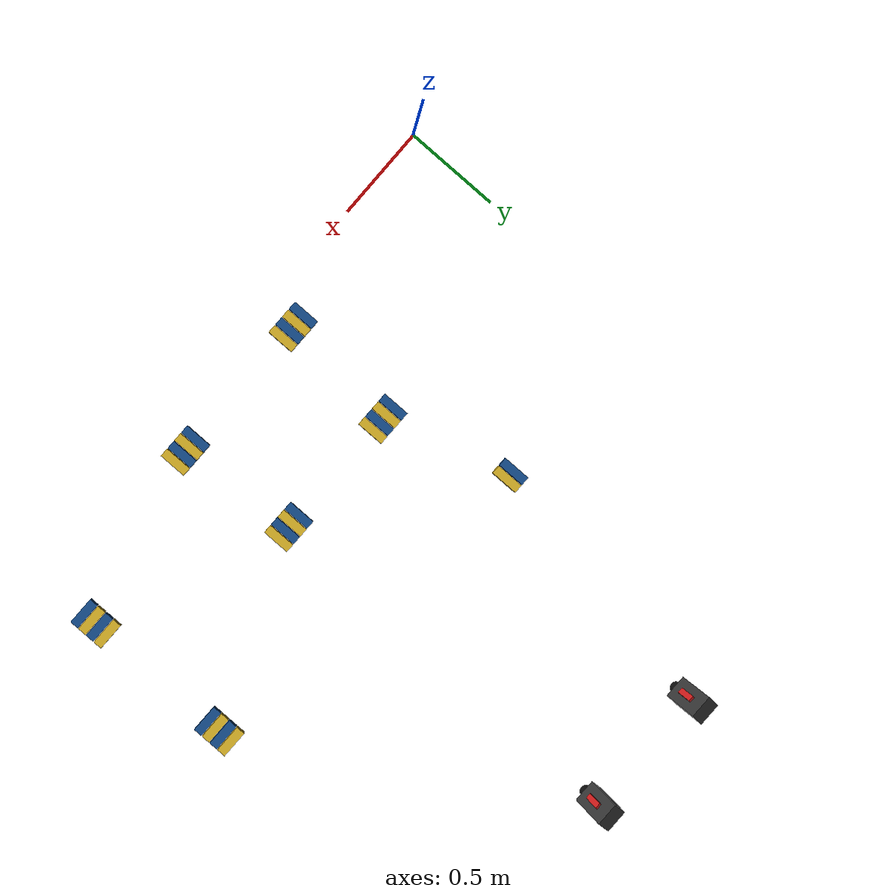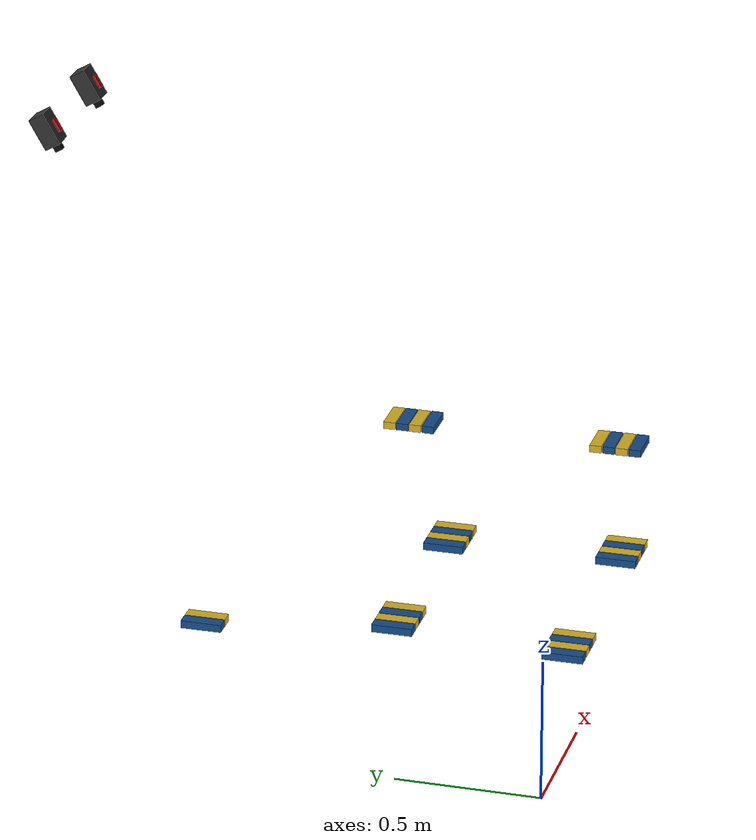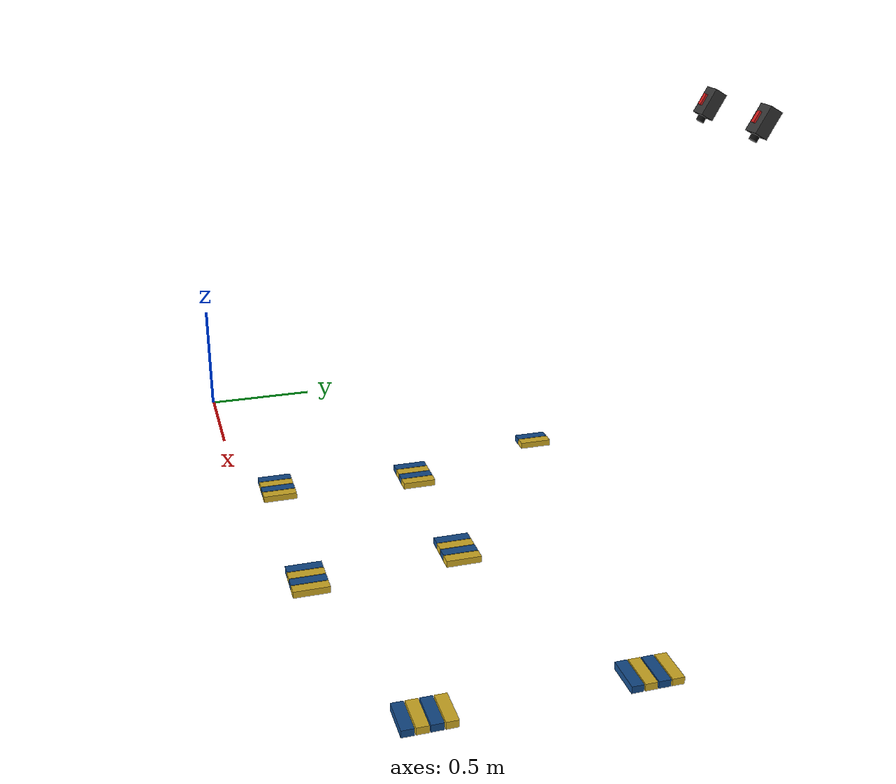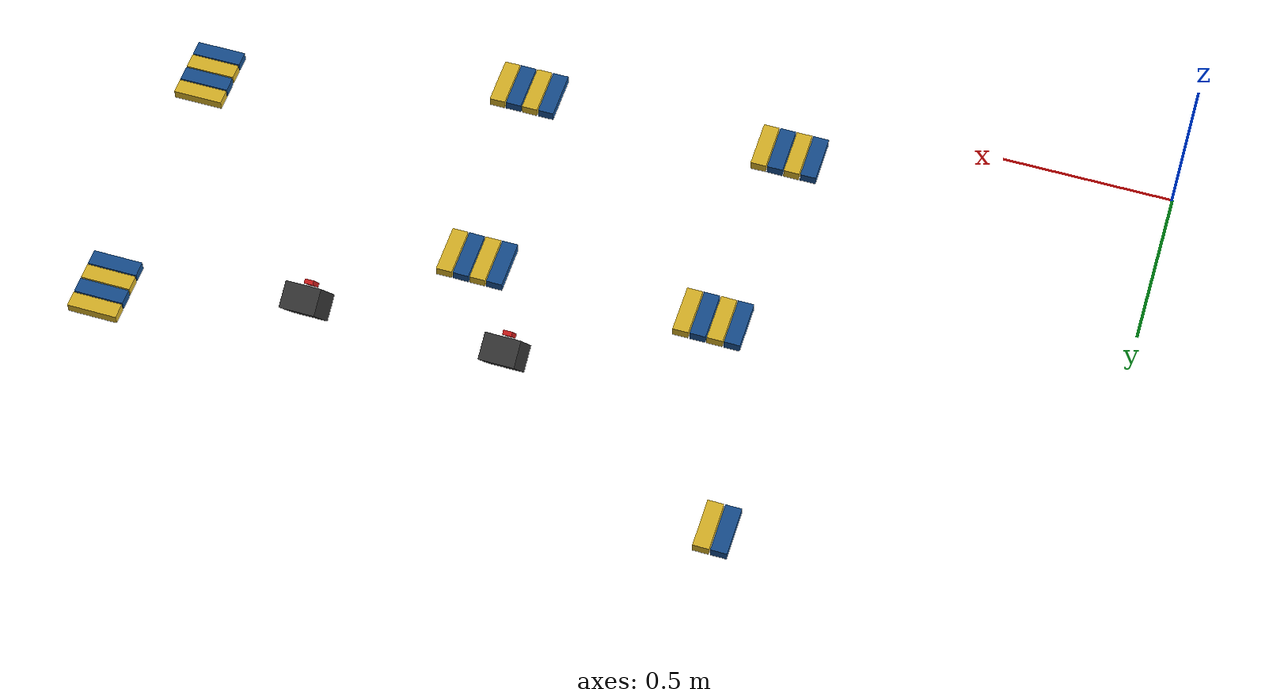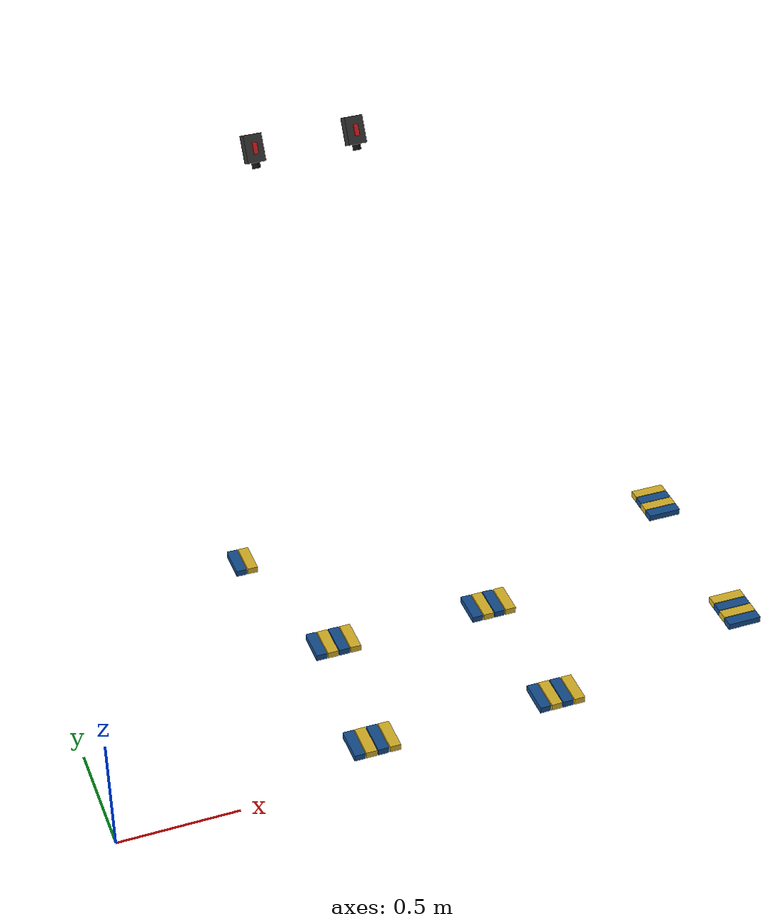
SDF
<sdf version="1.10">
 <world name="Eurobot_world">
  <model name="overhead_camera_yellow">
   <static>true</static>
   <pose>1.275 2.1 1.67 0 1.047198 -1.5708</pose>
   <link name="camera_link">
    <visual name="body_visual">
     <geometry><box><size>0.12 0.08 0.06</size></box></geometry>
     <material><ambient>0.15 0.15 0.15 1</ambient><diffuse>0.2 0.2 0.2 1</diffuse></material>
    </visual>
    <visual name="lens_visual">
     <pose>0.07 0 0 0 1.5708 0</pose>
     <geometry><cylinder><radius>0.018</radius><length>0.03</length></cylinder></geometry>
     <material><ambient>0.05 0.05 0.05 1</ambient><diffuse>0.05 0.05 0.05 1</diffuse></material>
    </visual>
    <visual name="top_marker_visual">
     <pose>0 0 0.04 0 0 0</pose>
     <geometry><box><size>0.05 0.02 0.01</size></box></geometry>
     <material><ambient>0.8 0.1 0.1 1</ambient><diffuse>0.8 0.1 0.1 1</diffuse></material>
    </visual>
    <sensor name="overhead_rgb" type="camera">
     <pose>0.085 0 0 0 0 0</pose>
     <always_on>0</always_on>
     <update_rate>30</update_rate>
     <visualize>true</visualize>
     <topic>/overhead_cam_yellow/image</topic>
     <camera>
      <horizontal_fov>1.6</horizontal_fov>
      <image><width>1920</width><height>1080</height><format>R8G8B8</format></image>
      <clip><near>0.05</near><far>20.0</far></clip>
     </camera>
    </sensor>
   </link>
  </model>
  <model name="overhead_camera_blue">
   <static>true</static>
   <pose>1.725 2.1 1.67 0 1.047198 -1.5708</pose>
   <link name="camera_link">
    <visual name="body_visual">
     <geometry><box><size>0.12 0.08 0.06</size></box></geometry>
     <material><ambient>0.15 0.15 0.15 1</ambient><diffuse>0.2 0.2 0.2 1</diffuse></material>
    </visual>
    <visual name="lens_visual">
     <pose>0.07 0 0 0 1.5708 0</pose>
     <geometry><cylinder><radius>0.018</radius><length>0.03</length></cylinder></geometry>
     <material><ambient>0.05 0.05 0.05 1</ambient><diffuse>0.05 0.05 0.05 1</diffuse></material>
    </visual>
    <visual name="top_marker_visual">
     <pose>0 0 0.04 0 0 0</pose>
     <geometry><box><size>0.05 0.02 0.01</size></box></geometry>
     <material><ambient>0.8 0.1 0.1 1</ambient><diffuse>0.8 0.1 0.1 1</diffuse></material>
    </visual>
    <sensor name="overhead_rgb" type="camera">
     <pose>0.085 0 0 0 0 0</pose>
     <always_on>0</always_on>
     <update_rate>30</update_rate>
     <visualize>true</visualize>
     <topic>/overhead_cam_blue/image</topic>
     <camera>
      <horizontal_fov>1.6</horizontal_fov>
      <image><width>1920</width><height>1080</height><format>R8G8B8</format></image>
      <clip><near>0.05</near><far>20.0</far></clip>
     </camera>
    </sensor>
   </link>
  </model>
  <model name="jenga_z3_p1">
   <pose>1.075 0.8 0.015 0 0 1.5707963267948966</pose>
   <link name="link">
    <inertial>
     <mass>0.02</mass>
     <inertia>
      <ixx>0.0000012</ixx>
      <iyy>0.0000042</iyy>
      <izz>0.0000045</izz>
      <ixy>0</ixy>
      <ixz>0</ixz>
      <iyz>0</iyz>
     </inertia>
    </inertial>
    <collision name="collision">
     <geometry><box><size>0.140 0.040 0.022</size></box></geometry>
     <surface>
      <friction><ode><mu>0.3</mu><mu2>0.3</mu2></ode></friction>
      <contact><ode><max_vel>0.1</max_vel><min_depth>0.001</min_depth></ode></contact>
     </surface>
    </collision>
    <visual name="visual">
     <geometry><box><size>0.146 0.046 0.028</size></box></geometry>
     <material>
      <ambient>0.08 0.3 0.55 1</ambient>
      <diffuse>0.08 0.3 0.55 1</diffuse>
      <specular>0.2 0.2 0.2 1</specular>
     </material>
    </visual>
   </link>
  </model>
  <model name="jenga_z3_p2">
   <pose>1.125 0.8 0.015 0 0 1.5707963267948966</pose>
   <link name="link">
    <inertial>
     <mass>0.02</mass>
     <inertia>
      <ixx>0.0000012</ixx>
      <iyy>0.0000042</iyy>
      <izz>0.0000045</izz>
      <ixy>0</ixy>
      <ixz>0</ixz>
      <iyz>0</iyz>
     </inertia>
    </inertial>
    <collision name="collision">
     <geometry><box><size>0.140 0.040 0.022</size></box></geometry>
     <surface>
      <friction><ode><mu>0.3</mu><mu2>0.3</mu2></ode></friction>
      <contact><ode><max_vel>0.1</max_vel><min_depth>0.001</min_depth></ode></contact>
     </surface>
    </collision>
    <visual name="visual">
     <geometry><box><size>0.146 0.046 0.028</size></box></geometry>
     <material>
      <ambient>0.85 0.7 0.15 1</ambient>
      <diffuse>0.85 0.7 0.15 1</diffuse>
      <specular>0.2 0.2 0.2 1</specular>
     </material>
    </visual>
   </link>
  </model>
  <model name="jenga_z3_p3">
   <pose>1.1749999999999998 0.8 0.015 0 0 1.5707963267948966</pose>
   <link name="link">
    <inertial>
     <mass>0.02</mass>
     <inertia>
      <ixx>0.0000012</ixx>
      <iyy>0.0000042</iyy>
      <izz>0.0000045</izz>
      <ixy>0</ixy>
      <ixz>0</ixz>
      <iyz>0</iyz>
     </inertia>
    </inertial>
    <collision name="collision">
     <geometry><box><size>0.140 0.040 0.022</size></box></geometry>
     <surface>
      <friction><ode><mu>0.3</mu><mu2>0.3</mu2></ode></friction>
      <contact><ode><max_vel>0.1</max_vel><min_depth>0.001</min_depth></ode></contact>
     </surface>
    </collision>
    <visual name="visual">
     <geometry><box><size>0.146 0.046 0.028</size></box></geometry>
     <material>
      <ambient>0.08 0.3 0.55 1</ambient>
      <diffuse>0.08 0.3 0.55 1</diffuse>
      <specular>0.2 0.2 0.2 1</specular>
     </material>
    </visual>
   </link>
  </model>
  <model name="jenga_z3_p4">
   <pose>1.2249999999999999 0.8 0.015 0 0 1.5707963267948966</pose>
   <link name="link">
    <inertial>
     <mass>0.02</mass>
     <inertia>
      <ixx>0.0000012</ixx>
      <iyy>0.0000042</iyy>
      <izz>0.0000045</izz>
      <ixy>0</ixy>
      <ixz>0</ixz>
      <iyz>0</iyz>
     </inertia>
    </inertial>
    <collision name="collision">
     <geometry><box><size>0.140 0.040 0.022</size></box></geometry>
     <surface>
      <friction><ode><mu>0.3</mu><mu2>0.3</mu2></ode></friction>
      <contact><ode><max_vel>0.1</max_vel><min_depth>0.001</min_depth></ode></contact>
     </surface>
    </collision>
    <visual name="visual">
     <geometry><box><size>0.146 0.046 0.028</size></box></geometry>
     <material>
      <ambient>0.85 0.7 0.15 1</ambient>
      <diffuse>0.85 0.7 0.15 1</diffuse>
      <specular>0.2 0.2 0.2 1</specular>
     </material>
    </visual>
   </link>
  </model>
  <model name="jenga_z4_p1">
   <pose>1.0250000000000001 0.175 0.015 0 0 1.5707963267948966</pose>
   <link name="link">
    <inertial>
     <mass>0.02</mass>
     <inertia>
      <ixx>0.0000012</ixx>
      <iyy>0.0000042</iyy>
      <izz>0.0000045</izz>
      <ixy>0</ixy>
      <ixz>0</ixz>
      <iyz>0</iyz>
     </inertia>
    </inertial>
    <collision name="collision">
     <geometry><box><size>0.140 0.040 0.022</size></box></geometry>
     <surface>
      <friction><ode><mu>0.3</mu><mu2>0.3</mu2></ode></friction>
      <contact><ode><max_vel>0.1</max_vel><min_depth>0.001</min_depth></ode></contact>
     </surface>
    </collision>
    <visual name="visual">
     <geometry><box><size>0.146 0.046 0.028</size></box></geometry>
     <material>
      <ambient>0.08 0.3 0.55 1</ambient>
      <diffuse>0.08 0.3 0.55 1</diffuse>
      <specular>0.2 0.2 0.2 1</specular>
     </material>
    </visual>
   </link>
  </model>
  <model name="jenga_z4_p2">
   <pose>1.0750000000000002 0.175 0.015 0 0 1.5707963267948966</pose>
   <link name="link">
    <inertial>
     <mass>0.02</mass>
     <inertia>
      <ixx>0.0000012</ixx>
      <iyy>0.0000042</iyy>
      <izz>0.0000045</izz>
      <ixy>0</ixy>
      <ixz>0</ixz>
      <iyz>0</iyz>
     </inertia>
    </inertial>
    <collision name="collision">
     <geometry><box><size>0.140 0.040 0.022</size></box></geometry>
     <surface>
      <friction><ode><mu>0.3</mu><mu2>0.3</mu2></ode></friction>
      <contact><ode><max_vel>0.1</max_vel><min_depth>0.001</min_depth></ode></contact>
     </surface>
    </collision>
    <visual name="visual">
     <geometry><box><size>0.146 0.046 0.028</size></box></geometry>
     <material>
      <ambient>0.85 0.7 0.15 1</ambient>
      <diffuse>0.85 0.7 0.15 1</diffuse>
      <specular>0.2 0.2 0.2 1</specular>
     </material>
    </visual>
   </link>
  </model>
  <model name="jenga_z4_p3">
   <pose>1.125 0.175 0.015 0 0 1.5707963267948966</pose>
   <link name="link">
    <inertial>
     <mass>0.02</mass>
     <inertia>
      <ixx>0.0000012</ixx>
      <iyy>0.0000042</iyy>
      <izz>0.0000045</izz>
      <ixy>0</ixy>
      <ixz>0</ixz>
      <iyz>0</iyz>
     </inertia>
    </inertial>
    <collision name="collision">
     <geometry><box><size>0.140 0.040 0.022</size></box></geometry>
     <surface>
      <friction><ode><mu>0.3</mu><mu2>0.3</mu2></ode></friction>
      <contact><ode><max_vel>0.1</max_vel><min_depth>0.001</min_depth></ode></contact>
     </surface>
    </collision>
    <visual name="visual">
     <geometry><box><size>0.146 0.046 0.028</size></box></geometry>
     <material>
      <ambient>0.08 0.3 0.55 1</ambient>
      <diffuse>0.08 0.3 0.55 1</diffuse>
      <specular>0.2 0.2 0.2 1</specular>
     </material>
    </visual>
   </link>
  </model>
  <model name="jenga_z4_p4">
   <pose>1.175 0.175 0.015 0 0 1.5707963267948966</pose>
   <link name="link">
    <inertial>
     <mass>0.02</mass>
     <inertia>
      <ixx>0.0000012</ixx>
      <iyy>0.0000042</iyy>
      <izz>0.0000045</izz>
      <ixy>0</ixy>
      <ixz>0</ixz>
      <iyz>0</iyz>
     </inertia>
    </inertial>
    <collision name="collision">
     <geometry><box><size>0.140 0.040 0.022</size></box></geometry>
     <surface>
      <friction><ode><mu>0.3</mu><mu2>0.3</mu2></ode></friction>
      <contact><ode><max_vel>0.1</max_vel><min_depth>0.001</min_depth></ode></contact>
     </surface>
    </collision>
    <visual name="visual">
     <geometry><box><size>0.146 0.046 0.028</size></box></geometry>
     <material>
      <ambient>0.85 0.7 0.15 1</ambient>
      <diffuse>0.85 0.7 0.15 1</diffuse>
      <specular>0.2 0.2 0.2 1</specular>
     </material>
    </visual>
   </link>
  </model>
  <model name="jenga_z5_p1">
   <pose>1.7750000000000001 0.8 0.015 0 0 1.5707963267948966</pose>
   <link name="link">
    <inertial>
     <mass>0.02</mass>
     <inertia>
      <ixx>0.0000012</ixx>
      <iyy>0.0000042</iyy>
      <izz>0.0000045</izz>
      <ixy>0</ixy>
      <ixz>0</ixz>
      <iyz>0</iyz>
     </inertia>
    </inertial>
    <collision name="collision">
     <geometry><box><size>0.140 0.040 0.022</size></box></geometry>
     <surface>
      <friction><ode><mu>0.3</mu><mu2>0.3</mu2></ode></friction>
      <contact><ode><max_vel>0.1</max_vel><min_depth>0.001</min_depth></ode></contact>
     </surface>
    </collision>
    <visual name="visual">
     <geometry><box><size>0.146 0.046 0.028</size></box></geometry>
     <material>
      <ambient>0.08 0.3 0.55 1</ambient>
      <diffuse>0.08 0.3 0.55 1</diffuse>
      <specular>0.2 0.2 0.2 1</specular>
     </material>
    </visual>
   </link>
  </model>
  <model name="jenga_z5_p2">
   <pose>1.8250000000000002 0.8 0.015 0 0 1.5707963267948966</pose>
   <link name="link">
    <inertial>
     <mass>0.02</mass>
     <inertia>
      <ixx>0.0000012</ixx>
      <iyy>0.0000042</iyy>
      <izz>0.0000045</izz>
      <ixy>0</ixy>
      <ixz>0</ixz>
      <iyz>0</iyz>
     </inertia>
    </inertial>
    <collision name="collision">
     <geometry><box><size>0.140 0.040 0.022</size></box></geometry>
     <surface>
      <friction><ode><mu>0.3</mu><mu2>0.3</mu2></ode></friction>
      <contact><ode><max_vel>0.1</max_vel><min_depth>0.001</min_depth></ode></contact>
     </surface>
    </collision>
    <visual name="visual">
     <geometry><box><size>0.146 0.046 0.028</size></box></geometry>
     <material>
      <ambient>0.85 0.7 0.15 1</ambient>
      <diffuse>0.85 0.7 0.15 1</diffuse>
      <specular>0.2 0.2 0.2 1</specular>
     </material>
    </visual>
   </link>
  </model>
  <model name="jenga_z5_p3">
   <pose>1.875 0.8 0.015 0 0 1.5707963267948966</pose>
   <link name="link">
    <inertial>
     <mass>0.02</mass>
     <inertia>
      <ixx>0.0000012</ixx>
      <iyy>0.0000042</iyy>
      <izz>0.0000045</izz>
      <ixy>0</ixy>
      <ixz>0</ixz>
      <iyz>0</iyz>
     </inertia>
    </inertial>
    <collision name="collision">
     <geometry><box><size>0.140 0.040 0.022</size></box></geometry>
     <surface>
      <friction><ode><mu>0.3</mu><mu2>0.3</mu2></ode></friction>
      <contact><ode><max_vel>0.1</max_vel><min_depth>0.001</min_depth></ode></contact>
     </surface>
    </collision>
    <visual name="visual">
     <geometry><box><size>0.146 0.046 0.028</size></box></geometry>
     <material>
      <ambient>0.08 0.3 0.55 1</ambient>
      <diffuse>0.08 0.3 0.55 1</diffuse>
      <specular>0.2 0.2 0.2 1</specular>
     </material>
    </visual>
   </link>
  </model>
  <model name="jenga_z5_p4">
   <pose>1.925 0.8 0.015 0 0 1.5707963267948966</pose>
   <link name="link">
    <inertial>
     <mass>0.02</mass>
     <inertia>
      <ixx>0.0000012</ixx>
      <iyy>0.0000042</iyy>
      <izz>0.0000045</izz>
      <ixy>0</ixy>
      <ixz>0</ixz>
      <iyz>0</iyz>
     </inertia>
    </inertial>
    <collision name="collision">
     <geometry><box><size>0.140 0.040 0.022</size></box></geometry>
     <surface>
      <friction><ode><mu>0.3</mu><mu2>0.3</mu2></ode></friction>
      <contact><ode><max_vel>0.1</max_vel><min_depth>0.001</min_depth></ode></contact>
     </surface>
    </collision>
    <visual name="visual">
     <geometry><box><size>0.146 0.046 0.028</size></box></geometry>
     <material>
      <ambient>0.85 0.7 0.15 1</ambient>
      <diffuse>0.85 0.7 0.15 1</diffuse>
      <specular>0.2 0.2 0.2 1</specular>
     </material>
    </visual>
   </link>
  </model>
  <model name="jenga_z6_p1">
   <pose>1.825 0.175 0.015 0 0 1.5707963267948966</pose>
   <link name="link">
    <inertial>
     <mass>0.02</mass>
     <inertia>
      <ixx>0.0000012</ixx>
      <iyy>0.0000042</iyy>
      <izz>0.0000045</izz>
      <ixy>0</ixy>
      <ixz>0</ixz>
      <iyz>0</iyz>
     </inertia>
    </inertial>
    <collision name="collision">
     <geometry><box><size>0.140 0.040 0.022</size></box></geometry>
     <surface>
      <friction><ode><mu>0.3</mu><mu2>0.3</mu2></ode></friction>
      <contact><ode><max_vel>0.1</max_vel><min_depth>0.001</min_depth></ode></contact>
     </surface>
    </collision>
    <visual name="visual">
     <geometry><box><size>0.146 0.046 0.028</size></box></geometry>
     <material>
      <ambient>0.08 0.3 0.55 1</ambient>
      <diffuse>0.08 0.3 0.55 1</diffuse>
      <specular>0.2 0.2 0.2 1</specular>
     </material>
    </visual>
   </link>
  </model>
  <model name="jenga_z6_p2">
   <pose>1.875 0.175 0.015 0 0 1.5707963267948966</pose>
   <link name="link">
    <inertial>
     <mass>0.02</mass>
     <inertia>
      <ixx>0.0000012</ixx>
      <iyy>0.0000042</iyy>
      <izz>0.0000045</izz>
      <ixy>0</ixy>
      <ixz>0</ixz>
      <iyz>0</iyz>
     </inertia>
    </inertial>
    <collision name="collision">
     <geometry><box><size>0.140 0.040 0.022</size></box></geometry>
     <surface>
      <friction><ode><mu>0.3</mu><mu2>0.3</mu2></ode></friction>
      <contact><ode><max_vel>0.1</max_vel><min_depth>0.001</min_depth></ode></contact>
     </surface>
    </collision>
    <visual name="visual">
     <geometry><box><size>0.146 0.046 0.028</size></box></geometry>
     <material>
      <ambient>0.85 0.7 0.15 1</ambient>
      <diffuse>0.85 0.7 0.15 1</diffuse>
      <specular>0.2 0.2 0.2 1</specular>
     </material>
    </visual>
   </link>
  </model>
  <model name="jenga_z6_p3">
   <pose>1.9249999999999998 0.175 0.015 0 0 1.5707963267948966</pose>
   <link name="link">
    <inertial>
     <mass>0.02</mass>
     <inertia>
      <ixx>0.0000012</ixx>
      <iyy>0.0000042</iyy>
      <izz>0.0000045</izz>
      <ixy>0</ixy>
      <ixz>0</ixz>
      <iyz>0</iyz>
     </inertia>
    </inertial>
    <collision name="collision">
     <geometry><box><size>0.140 0.040 0.022</size></box></geometry>
     <surface>
      <friction><ode><mu>0.3</mu><mu2>0.3</mu2></ode></friction>
      <contact><ode><max_vel>0.1</max_vel><min_depth>0.001</min_depth></ode></contact>
     </surface>
    </collision>
    <visual name="visual">
     <geometry><box><size>0.146 0.046 0.028</size></box></geometry>
     <material>
      <ambient>0.08 0.3 0.55 1</ambient>
      <diffuse>0.08 0.3 0.55 1</diffuse>
      <specular>0.2 0.2 0.2 1</specular>
     </material>
    </visual>
   </link>
  </model>
  <model name="jenga_z6_p4">
   <pose>1.9749999999999999 0.175 0.015 0 0 1.5707963267948966</pose>
   <link name="link">
    <inertial>
     <mass>0.02</mass>
     <inertia>
      <ixx>0.0000012</ixx>
      <iyy>0.0000042</iyy>
      <izz>0.0000045</izz>
      <ixy>0</ixy>
      <ixz>0</ixz>
      <iyz>0</iyz>
     </inertia>
    </inertial>
    <collision name="collision">
     <geometry><box><size>0.140 0.040 0.022</size></box></geometry>
     <surface>
      <friction><ode><mu>0.3</mu><mu2>0.3</mu2></ode></friction>
      <contact><ode><max_vel>0.1</max_vel><min_depth>0.001</min_depth></ode></contact>
     </surface>
    </collision>
    <visual name="visual">
     <geometry><box><size>0.146 0.046 0.028</size></box></geometry>
     <material>
      <ambient>0.85 0.7 0.15 1</ambient>
      <diffuse>0.85 0.7 0.15 1</diffuse>
      <specular>0.2 0.2 0.2 1</specular>
     </material>
    </visual>
   </link>
  </model>
  <model name="jenga_z7_p1">
   <pose>2.825 1.125 0.015 0 0 0.0</pose>
   <link name="link">
    <inertial>
     <mass>0.02</mass>
     <inertia>
      <ixx>0.0000012</ixx>
      <iyy>0.0000042</iyy>
      <izz>0.0000045</izz>
      <ixy>0</ixy>
      <ixz>0</ixz>
      <iyz>0</iyz>
     </inertia>
    </inertial>
    <collision name="collision">
     <geometry><box><size>0.140 0.040 0.022</size></box></geometry>
     <surface>
      <friction><ode><mu>0.3</mu><mu2>0.3</mu2></ode></friction>
      <contact><ode><max_vel>0.1</max_vel><min_depth>0.001</min_depth></ode></contact>
     </surface>
    </collision>
    <visual name="visual">
     <geometry><box><size>0.146 0.046 0.028</size></box></geometry>
     <material>
      <ambient>0.08 0.3 0.55 1</ambient>
      <diffuse>0.08 0.3 0.55 1</diffuse>
      <specular>0.2 0.2 0.2 1</specular>
     </material>
    </visual>
   </link>
  </model>
  <model name="jenga_z7_p2">
   <pose>2.825 1.175 0.015 0 0 0.0</pose>
   <link name="link">
    <inertial>
     <mass>0.02</mass>
     <inertia>
      <ixx>0.0000012</ixx>
      <iyy>0.0000042</iyy>
      <izz>0.0000045</izz>
      <ixy>0</ixy>
      <ixz>0</ixz>
      <iyz>0</iyz>
     </inertia>
    </inertial>
    <collision name="collision">
     <geometry><box><size>0.140 0.040 0.022</size></box></geometry>
     <surface>
      <friction><ode><mu>0.3</mu><mu2>0.3</mu2></ode></friction>
      <contact><ode><max_vel>0.1</max_vel><min_depth>0.001</min_depth></ode></contact>
     </surface>
    </collision>
    <visual name="visual">
     <geometry><box><size>0.146 0.046 0.028</size></box></geometry>
     <material>
      <ambient>0.85 0.7 0.15 1</ambient>
      <diffuse>0.85 0.7 0.15 1</diffuse>
      <specular>0.2 0.2 0.2 1</specular>
     </material>
    </visual>
   </link>
  </model>
  <model name="jenga_z7_p3">
   <pose>2.825 1.2249999999999999 0.015 0 0 0.0</pose>
   <link name="link">
    <inertial>
     <mass>0.02</mass>
     <inertia>
      <ixx>0.0000012</ixx>
      <iyy>0.0000042</iyy>
      <izz>0.0000045</izz>
      <ixy>0</ixy>
      <ixz>0</ixz>
      <iyz>0</iyz>
     </inertia>
    </inertial>
    <collision name="collision">
     <geometry><box><size>0.140 0.040 0.022</size></box></geometry>
     <surface>
      <friction><ode><mu>0.3</mu><mu2>0.3</mu2></ode></friction>
      <contact><ode><max_vel>0.1</max_vel><min_depth>0.001</min_depth></ode></contact>
     </surface>
    </collision>
    <visual name="visual">
     <geometry><box><size>0.146 0.046 0.028</size></box></geometry>
     <material>
      <ambient>0.08 0.3 0.55 1</ambient>
      <diffuse>0.08 0.3 0.55 1</diffuse>
      <specular>0.2 0.2 0.2 1</specular>
     </material>
    </visual>
   </link>
  </model>
  <model name="jenga_z7_p4">
   <pose>2.825 1.275 0.015 0 0 0.0</pose>
   <link name="link">
    <inertial>
     <mass>0.02</mass>
     <inertia>
      <ixx>0.0000012</ixx>
      <iyy>0.0000042</iyy>
      <izz>0.0000045</izz>
      <ixy>0</ixy>
      <ixz>0</ixz>
      <iyz>0</iyz>
     </inertia>
    </inertial>
    <collision name="collision">
     <geometry><box><size>0.140 0.040 0.022</size></box></geometry>
     <surface>
      <friction><ode><mu>0.3</mu><mu2>0.3</mu2></ode></friction>
      <contact><ode><max_vel>0.1</max_vel><min_depth>0.001</min_depth></ode></contact>
     </surface>
    </collision>
    <visual name="visual">
     <geometry><box><size>0.146 0.046 0.028</size></box></geometry>
     <material>
      <ambient>0.85 0.7 0.15 1</ambient>
      <diffuse>0.85 0.7 0.15 1</diffuse>
      <specular>0.2 0.2 0.2 1</specular>
     </material>
    </visual>
   </link>
  </model>
  <model name="jenga_z8_p1">
   <pose>2.825 0.325 0.015 0 0 0.0</pose>
   <link name="link">
    <inertial>
     <mass>0.02</mass>
     <inertia>
      <ixx>0.0000012</ixx>
      <iyy>0.0000042</iyy>
      <izz>0.0000045</izz>
      <ixy>0</ixy>
      <ixz>0</ixz>
      <iyz>0</iyz>
     </inertia>
    </inertial>
    <collision name="collision">
     <geometry><box><size>0.140 0.040 0.022</size></box></geometry>
     <surface>
      <friction><ode><mu>0.3</mu><mu2>0.3</mu2></ode></friction>
      <contact><ode><max_vel>0.1</max_vel><min_depth>0.001</min_depth></ode></contact>
     </surface>
    </collision>
    <visual name="visual">
     <geometry><box><size>0.146 0.046 0.028</size></box></geometry>
     <material>
      <ambient>0.08 0.3 0.55 1</ambient>
      <diffuse>0.08 0.3 0.55 1</diffuse>
      <specular>0.2 0.2 0.2 1</specular>
     </material>
    </visual>
   </link>
  </model>
  <model name="jenga_z8_p2">
   <pose>2.825 0.375 0.015 0 0 0.0</pose>
   <link name="link">
    <inertial>
     <mass>0.02</mass>
     <inertia>
      <ixx>0.0000012</ixx>
      <iyy>0.0000042</iyy>
      <izz>0.0000045</izz>
      <ixy>0</ixy>
      <ixz>0</ixz>
      <iyz>0</iyz>
     </inertia>
    </inertial>
    <collision name="collision">
     <geometry><box><size>0.140 0.040 0.022</size></box></geometry>
     <surface>
      <friction><ode><mu>0.3</mu><mu2>0.3</mu2></ode></friction>
      <contact><ode><max_vel>0.1</max_vel><min_depth>0.001</min_depth></ode></contact>
     </surface>
    </collision>
    <visual name="visual">
     <geometry><box><size>0.146 0.046 0.028</size></box></geometry>
     <material>
      <ambient>0.85 0.7 0.15 1</ambient>
      <diffuse>0.85 0.7 0.15 1</diffuse>
      <specular>0.2 0.2 0.2 1</specular>
     </material>
    </visual>
   </link>
  </model>
  <model name="jenga_z8_p3">
   <pose>2.825 0.42500000000000004 0.015 0 0 0.0</pose>
   <link name="link">
    <inertial>
     <mass>0.02</mass>
     <inertia>
      <ixx>0.0000012</ixx>
      <iyy>0.0000042</iyy>
      <izz>0.0000045</izz>
      <ixy>0</ixy>
      <ixz>0</ixz>
      <iyz>0</iyz>
     </inertia>
    </inertial>
    <collision name="collision">
     <geometry><box><size>0.140 0.040 0.022</size></box></geometry>
     <surface>
      <friction><ode><mu>0.3</mu><mu2>0.3</mu2></ode></friction>
      <contact><ode><max_vel>0.1</max_vel><min_depth>0.001</min_depth></ode></contact>
     </surface>
    </collision>
    <visual name="visual">
     <geometry><box><size>0.146 0.046 0.028</size></box></geometry>
     <material>
      <ambient>0.08 0.3 0.55 1</ambient>
      <diffuse>0.08 0.3 0.55 1</diffuse>
      <specular>0.2 0.2 0.2 1</specular>
     </material>
    </visual>
   </link>
  </model>
  <model name="jenga_z8_p4">
   <pose>2.825 0.47500000000000003 0.015 0 0 0.0</pose>
   <link name="link">
    <inertial>
     <mass>0.02</mass>
     <inertia>
      <ixx>0.0000012</ixx>
      <iyy>0.0000042</iyy>
      <izz>0.0000045</izz>
      <ixy>0</ixy>
      <ixz>0</ixz>
      <iyz>0</iyz>
     </inertia>
    </inertial>
    <collision name="collision">
     <geometry><box><size>0.140 0.040 0.022</size></box></geometry>
     <surface>
      <friction><ode><mu>0.3</mu><mu2>0.3</mu2></ode></friction>
      <contact><ode><max_vel>0.1</max_vel><min_depth>0.001</min_depth></ode></contact>
     </surface>
    </collision>
    <visual name="visual">
     <geometry><box><size>0.146 0.046 0.028</size></box></geometry>
     <material>
      <ambient>0.85 0.7 0.15 1</ambient>
      <diffuse>0.85 0.7 0.15 1</diffuse>
      <specular>0.2 0.2 0.2 1</specular>
     </material>
    </visual>
   </link>
  </model>
  <model name="jenga_z9_p3">
   <pose>0.925 1.45 0.015 0 0 1.5707963267948966</pose>
   <link name="link">
    <inertial>
     <mass>0.02</mass>
     <inertia>
      <ixx>0.0000012</ixx>
      <iyy>0.0000042</iyy>
      <izz>0.0000045</izz>
      <ixy>0</ixy>
      <ixz>0</ixz>
      <iyz>0</iyz>
     </inertia>
    </inertial>
    <collision name="collision">
     <geometry><box><size>0.140 0.040 0.022</size></box></geometry>
     <surface>
      <friction><ode><mu>0.3</mu><mu2>0.3</mu2></ode></friction>
      <contact><ode><max_vel>0.1</max_vel><min_depth>0.001</min_depth></ode></contact>
     </surface>
    </collision>
    <visual name="visual">
     <geometry><box><size>0.146 0.046 0.028</size></box></geometry>
     <material>
      <ambient>0.08 0.3 0.55 1</ambient>
      <diffuse>0.08 0.3 0.55 1</diffuse>
      <specular>0.2 0.2 0.2 1</specular>
     </material>
    </visual>
   </link>
  </model>
  <model name="jenga_z9_p4">
   <pose>0.975 1.45 0.015 0 0 1.5707963267948966</pose>
   <link name="link">
    <inertial>
     <mass>0.02</mass>
     <inertia>
      <ixx>0.0000012</ixx>
      <iyy>0.0000042</iyy>
      <izz>0.0000045</izz>
      <ixy>0</ixy>
      <ixz>0</ixz>
      <iyz>0</iyz>
     </inertia>
    </inertial>
    <collision name="collision">
     <geometry><box><size>0.140 0.040 0.022</size></box></geometry>
     <surface>
      <friction><ode><mu>0.3</mu><mu2>0.3</mu2></ode></friction>
      <contact><ode><max_vel>0.1</max_vel><min_depth>0.001</min_depth></ode></contact>
     </surface>
    </collision>
    <visual name="visual">
     <geometry><box><size>0.146 0.046 0.028</size></box></geometry>
     <material>
      <ambient>0.85 0.7 0.15 1</ambient>
      <diffuse>0.85 0.7 0.15 1</diffuse>
      <specular>0.2 0.2 0.2 1</specular>
     </material>
    </visual>
   </link>
  </model>
 </world>
</sdf>
